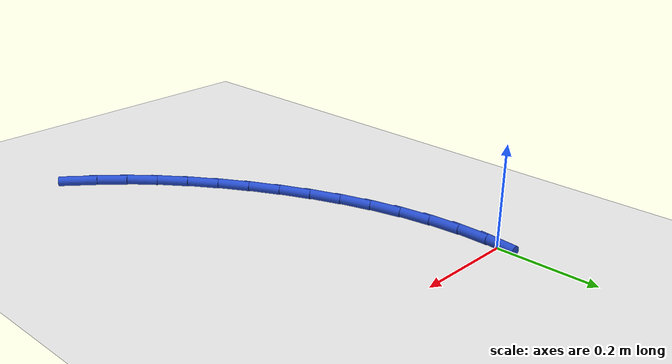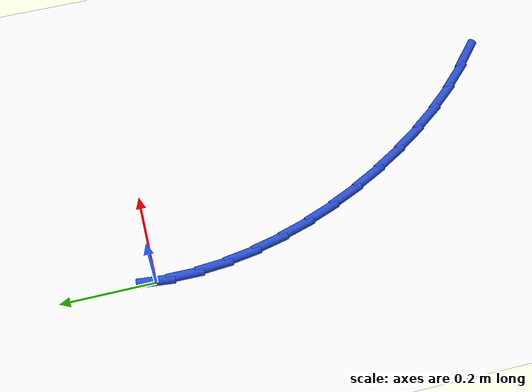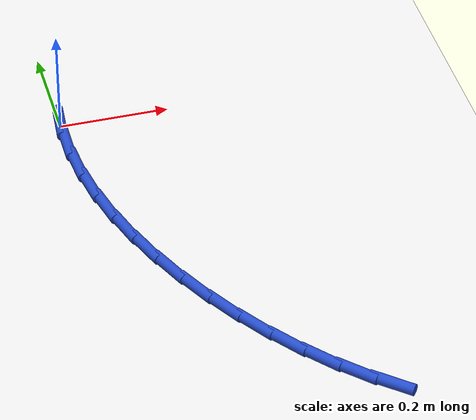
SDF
<sdf version="1.6">
 <world name="default">
  <model name="ground_plane">
   <static>1</static>
   <link name="link">
    <collision name="collision">
     <geometry><plane><normal>0 0 1</normal><size>100 100</size></plane></geometry>
     <surface><friction><ode><mu>100</mu><mu2>50</mu2></ode></friction></surface>
    </collision>
    <visual name="visual">
     <cast_shadows>0</cast_shadows>
     <geometry><plane><normal>0 0 1</normal><size>100 100</size></plane></geometry>
     <material>
      <script><uri>file://media/materials/scripts/gazebo.material</uri><name>Gazebo/WhiteGlow</name></script>
     </material>
    </visual>
   </link>
  </model>
  <model name="line">
   <link name="link_0">
    <pose>-2.0816681711721685e-17 -4.163336342344337e-17 0.01 0 1.57 1.475097265304601</pose>
    <collision name="collision">
     <geometry><cylinder><radius>0.01</radius><length>0.08</length></cylinder></geometry>
    </collision>
    <visual name="visual">
     <material>
      <script><name>Gazebo/Blue</name><uri>file://media/materials/scripts/gazebo.material</uri></script>
     </material>
     <geometry><cylinder><radius>0.01</radius><length>0.08</length></cylinder></geometry>
    </visual>
   </link>
   <link name="link_106">
    <pose>0.3754268862997008 -0.7897542272724146 0.01 0 1.57 -0.706213035702583</pose>
    <collision name="collision">
     <geometry><cylinder><radius>0.01</radius><length>0.08</length></cylinder></geometry>
    </collision>
    <visual name="visual">
     <material>
      <script><name>Gazebo/Blue</name><uri>file://media/materials/scripts/gazebo.material</uri></script>
     </material>
     <geometry><cylinder><radius>0.01</radius><length>0.08</length></cylinder></geometry>
    </visual>
   </link>
   <link name="link_107">
    <pose>0.3273581270782136 -0.7487532453784573 0.01 0 1.57 -0.7843698566157941</pose>
    <collision name="collision">
     <geometry><cylinder><radius>0.01</radius><length>0.08</length></cylinder></geometry>
    </collision>
    <visual name="visual">
     <material>
      <script><name>Gazebo/Blue</name><uri>file://media/materials/scripts/gazebo.material</uri></script>
     </material>
     <geometry><cylinder><radius>0.01</radius><length>0.08</length></cylinder></geometry>
    </visual>
   </link>
   <link name="link_108">
    <pose>0.28171021290490694 -0.7031991149192032 0.01 0 1.57 -0.8549646142152848</pose>
    <collision name="collision">
     <geometry><cylinder><radius>0.01</radius><length>0.08</length></cylinder></geometry>
    </collision>
    <visual name="visual">
     <material>
      <script><name>Gazebo/Blue</name><uri>file://media/materials/scripts/gazebo.material</uri></script>
     </material>
     <geometry><cylinder><radius>0.01</radius><length>0.08</length></cylinder></geometry>
    </visual>
   </link>
   <link name="link_109">
    <pose>0.23868112075878356 -0.6537244646277499 0.01 0 1.57 -0.919572584561893</pose>
    <collision name="collision">
     <geometry><cylinder><radius>0.01</radius><length>0.08</length></cylinder></geometry>
    </collision>
    <visual name="visual">
     <material>
      <script><name>Gazebo/Blue</name><uri>file://media/materials/scripts/gazebo.material</uri></script>
     </material>
     <geometry><cylinder><radius>0.01</radius><length>0.08</length></cylinder></geometry>
    </visual>
   </link>
   <link name="link_110">
    <pose>0.19846882761884463 -0.600961923237194 0.01 0 1.57 -0.9796482990041449</pose>
    <collision name="collision">
     <geometry><cylinder><radius>0.01</radius><length>0.08</length></cylinder></geometry>
    </collision>
    <visual name="visual">
     <material>
      <script><name>Gazebo/Blue</name><uri>file://media/materials/scripts/gazebo.material</uri></script>
     </material>
     <geometry><cylinder><radius>0.01</radius><length>0.08</length></cylinder></geometry>
    </visual>
   </link>
   <link name="link_111">
    <pose>0.1612713104640918 -0.5455441194806322 0.01 0 1.57 -1.0365422821671937</pose>
    <collision name="collision">
     <geometry><cylinder><radius>0.01</radius><length>0.08</length></cylinder></geometry>
    </collision>
    <visual name="visual">
     <material>
      <script><name>Gazebo/Blue</name><uri>file://media/materials/scripts/gazebo.material</uri></script>
     </material>
     <geometry><cylinder><radius>0.01</radius><length>0.08</length></cylinder></geometry>
    </visual>
   </link>
   <link name="link_112">
    <pose>0.12728662673159094 -0.4881031895563564 0.01 0 1.57 -1.0924264822447278</pose>
    <collision name="collision">
     <geometry><cylinder><radius>0.01</radius><length>0.08</length></cylinder></geometry>
    </collision>
    <visual name="visual">
     <material>
      <script><name>Gazebo/Blue</name><uri>file://media/materials/scripts/gazebo.material</uri></script>
     </material>
     <geometry><cylinder><radius>0.01</radius><length>0.08</length></cylinder></geometry>
    </visual>
   </link>
   <link name="link_113">
    <pose>0.0967288970973953 -0.42917293639670556 0.01 0 1.57 -1.150223900446581</pose>
    <collision name="collision">
     <geometry><cylinder><radius>0.01</radius><length>0.08</length></cylinder></geometry>
    </collision>
    <visual name="visual">
     <material>
      <script><name>Gazebo/Blue</name><uri>file://media/materials/scripts/gazebo.material</uri></script>
     </material>
     <geometry><cylinder><radius>0.01</radius><length>0.08</length></cylinder></geometry>
    </visual>
   </link>
   <link name="link_114">
    <pose>0.06984760524062525 -0.3690706835808332 0.01 0 1.57 -1.2108618286644417</pose>
    <collision name="collision">
     <geometry><cylinder><radius>0.01</radius><length>0.08</length></cylinder></geometry>
    </collision>
    <visual name="visual">
     <material>
      <script><name>Gazebo/Blue</name><uri>file://media/materials/scripts/gazebo.material</uri></script>
     </material>
     <geometry><cylinder><radius>0.01</radius><length>0.08</length></cylinder></geometry>
    </visual>
   </link>
   <link name="link_115">
    <pose>0.046896946742960195 -0.3080849101461505 0.01 0 1.57 -1.27500117825676</pose>
    <collision name="collision">
     <geometry><cylinder><radius>0.01</radius><length>0.08</length></cylinder></geometry>
    </collision>
    <visual name="visual">
     <material>
      <script><name>Gazebo/Blue</name><uri>file://media/materials/scripts/gazebo.material</uri></script>
     </material>
     <geometry><cylinder><radius>0.01</radius><length>0.08</length></cylinder></geometry>
    </visual>
   </link>
   <link name="link_116">
    <pose>0.028131117186080256 -0.24650409513007027 0.01 0 1.57 -1.3433056541029702</pose>
    <collision name="collision">
     <geometry><cylinder><radius>0.01</radius><length>0.08</length></cylinder></geometry>
    </collision>
    <visual name="visual">
     <material>
      <script><name>Gazebo/Blue</name><uri>file://media/materials/scripts/gazebo.material</uri></script>
     </material>
     <geometry><cylinder><radius>0.01</radius><length>0.08</length></cylinder></geometry>
    </visual>
   </link>
   <link name="link_117">
    <pose>0.013804312151664683 -0.1846167175700036 0.01 0 1.57 -1.4164168837028759</pose>
    <collision name="collision">
     <geometry><cylinder><radius>0.01</radius><length>0.08</length></cylinder></geometry>
    </collision>
    <visual name="visual">
     <material>
      <script><name>Gazebo/Blue</name><uri>file://media/materials/scripts/gazebo.material</uri></script>
     </material>
     <geometry><cylinder><radius>0.01</radius><length>0.08</length></cylinder></geometry>
    </visual>
   </link>
   <link name="link_118">
    <pose>0.004170727221393049 -0.12271125650336201 0.01 0 1.57 -1.4949114288220202</pose>
    <collision name="collision">
     <geometry><cylinder><radius>0.01</radius><length>0.08</length></cylinder></geometry>
    </collision>
    <visual name="visual">
     <material>
      <script><name>Gazebo/Blue</name><uri>file://media/materials/scripts/gazebo.material</uri></script>
     </material>
     <geometry><cylinder><radius>0.01</radius><length>0.08</length></cylinder></geometry>
    </visual>
   </link>
   <link name="link_119">
    <pose>-0.0005154420230550939 -0.06107619096755638 0.01 0 1.57 1.5623571989051168</pose>
    <collision name="collision">
     <geometry><cylinder><radius>0.01</radius><length>0.08</length></cylinder></geometry>
    </collision>
    <visual name="visual">
     <material>
      <script><name>Gazebo/Blue</name><uri>file://media/materials/scripts/gazebo.material</uri></script>
     </material>
     <geometry><cylinder><radius>0.01</radius><length>0.08</length></cylinder></geometry>
    </visual>
   </link>
  </model>
 </world>
</sdf>
